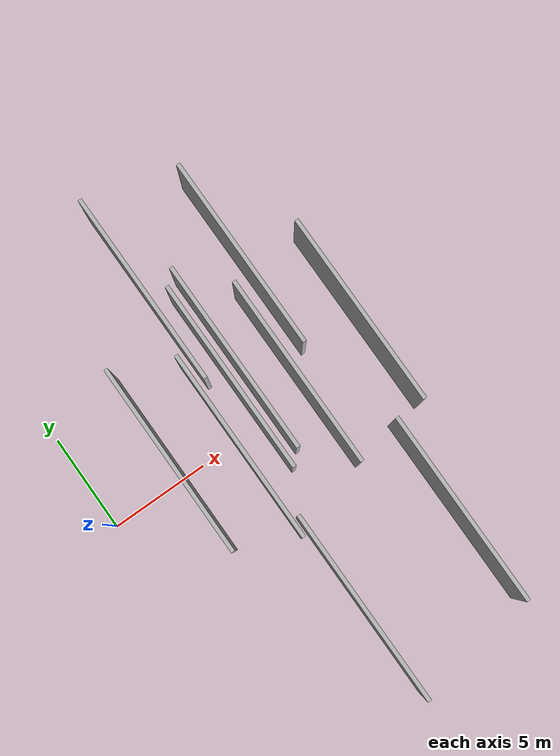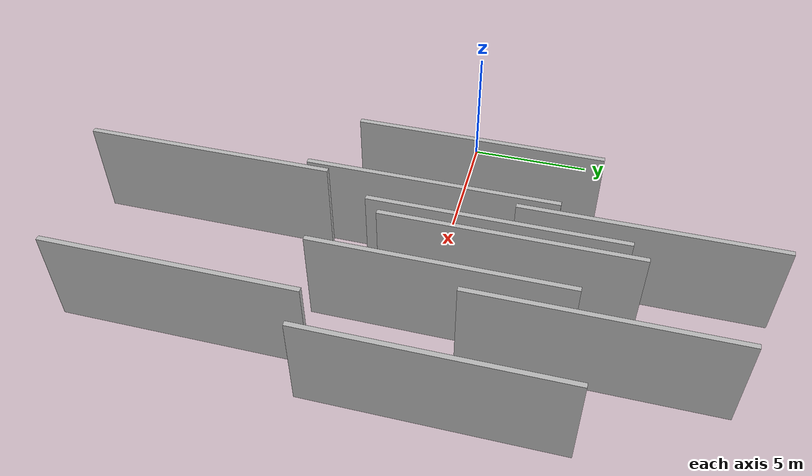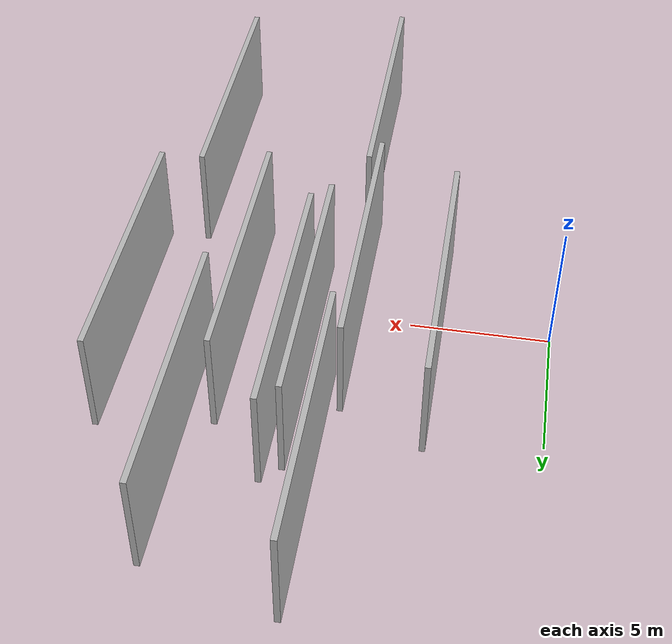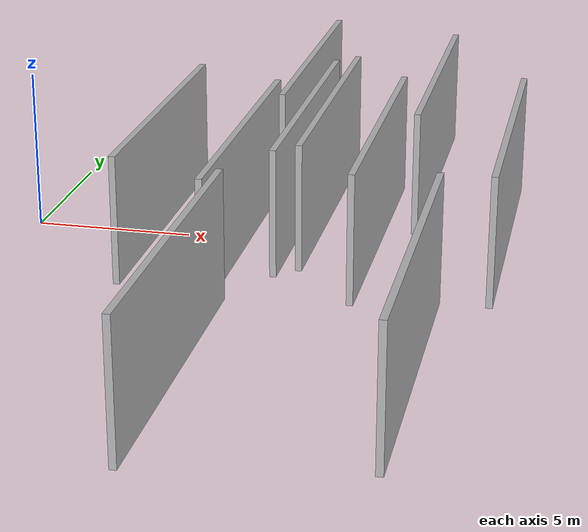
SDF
<sdf version="1.6">
 <world name="default">
  <scene>
   <sky><clouds><speed>12</speed></clouds></sky>
   <ambient>0.4 0.4 0.4 1</ambient>
   <background>0.7 0.7 0.7 1</background>
   <shadows>1</shadows>
  </scene>
  <gravity>0 0 -9.8066</gravity>
  <magnetic_field>6e-06 2.3e-05 -4.2e-05</magnetic_field>
  <physics default="0" name="default_physics" type="ode">
   <ode>
    <solver>
     <type>quick</type>
     <iters>10</iters>
     <sor>1.0</sor>
     <use_dynamic_moi_rescaling>0</use_dynamic_moi_rescaling>
    </solver>
    <constraints>
     <cfm>0</cfm>
     <erp>0.2</erp>
     <contact_max_correcting_vel>100</contact_max_correcting_vel>
     <contact_surface_layer>0.001</contact_surface_layer>
    </constraints>
   </ode>
   <max_step_size>0.004</max_step_size>
   <real_time_factor>1</real_time_factor>
   <real_time_update_rate>250</real_time_update_rate>
  </physics>
  <light name="sun" type="directional">
   <pose>0 0 10 0 0 0</pose>
   <diffuse>0.8 0.8 0.8 1</diffuse>
   <specular>0.2 0.2 0.2 1</specular>
   <attenuation>
    <range>1000</range>
    <constant>0.9</constant>
    <linear>0.01</linear>
    <quadratic>0.001</quadratic>
   </attenuation>
   <direction>-0.5 0.1 -0.9</direction>
  </light>
  <model name="grey_wall_1">
   <static>1</static>
   <pose>14.9254 1.4174 0.0 0.000000 0.000000 1.570796</pose>
   <link name="link">
    <pose>0 0 2.00 0 0 0</pose>
    <collision name="collision"><geometry><box><size>10.00 0.2 4.00</size></box></geometry></collision>
    <visual name="visual">
     <cast_shadows>0</cast_shadows>
     <geometry><box><size>10.00 0.2 4.00</size></box></geometry>
     <material>
      <script>
       <uri>model://HANNAS_wall/materials/scripts</uri>
       <uri>model://HANNAS_wall/materials/textures</uri>
       <name>vrc/HANNAS_wall</name>
      </script>
     </material>
    </visual>
   </link>
  </model>
  <model name="grey_wall_2">
   <static>1</static>
   <pose>10.9847 0.7421 0.0 0.000000 0.000000 1.570796</pose>
   <link name="link">
    <pose>0 0 2.00 0 0 0</pose>
    <collision name="collision"><geometry><box><size>10.00 0.2 4.00</size></box></geometry></collision>
    <visual name="visual">
     <cast_shadows>0</cast_shadows>
     <geometry><box><size>10.00 0.2 4.00</size></box></geometry>
     <material>
      <script>
       <uri>model://HANNAS_wall/materials/scripts</uri>
       <uri>model://HANNAS_wall/materials/textures</uri>
       <name>vrc/HANNAS_wall</name>
      </script>
     </material>
    </visual>
   </link>
  </model>
  <model name="grey_wall_3">
   <static>1</static>
   <pose>8.3673 2.2886 0.0 0.000000 0.000000 1.570796</pose>
   <link name="link">
    <pose>0 0 2.00 0 0 0</pose>
    <collision name="collision"><geometry><box><size>10.00 0.2 4.00</size></box></geometry></collision>
    <visual name="visual">
     <cast_shadows>0</cast_shadows>
     <geometry><box><size>10.00 0.2 4.00</size></box></geometry>
     <material>
      <script>
       <uri>model://HANNAS_wall/materials/scripts</uri>
       <uri>model://HANNAS_wall/materials/textures</uri>
       <name>vrc/HANNAS_wall</name>
      </script>
     </material>
    </visual>
   </link>
  </model>
  <model name="grey_wall_4">
   <static>1</static>
   <pose>7.2706 -9.5734 0.0 0.000000 0.000000 1.570796</pose>
   <link name="link">
    <pose>0 0 2.00 0 0 0</pose>
    <collision name="collision"><geometry><box><size>10.00 0.2 4.00</size></box></geometry></collision>
    <visual name="visual">
     <cast_shadows>0</cast_shadows>
     <geometry><box><size>10.00 0.2 4.00</size></box></geometry>
     <material>
      <script>
       <uri>model://HANNAS_wall/materials/scripts</uri>
       <uri>model://HANNAS_wall/materials/textures</uri>
       <name>vrc/HANNAS_wall</name>
      </script>
     </material>
    </visual>
   </link>
  </model>
  <model name="grey_wall_5">
   <static>1</static>
   <pose>12.0052 6.6397 0.0 0.000000 0.000000 1.570796</pose>
   <link name="link">
    <pose>0 0 2.00 0 0 0</pose>
    <collision name="collision"><geometry><box><size>10.00 0.2 4.00</size></box></geometry></collision>
    <visual name="visual">
     <cast_shadows>0</cast_shadows>
     <geometry><box><size>10.00 0.2 4.00</size></box></geometry>
     <material>
      <script>
       <uri>model://HANNAS_wall/materials/scripts</uri>
       <uri>model://HANNAS_wall/materials/textures</uri>
       <name>vrc/HANNAS_wall</name>
      </script>
     </material>
    </visual>
   </link>
  </model>
  <model name="grey_wall_6">
   <static>1</static>
   <pose>9.0205 2.9055 0.0 0.000000 0.000000 1.570796</pose>
   <link name="link">
    <pose>0 0 2.00 0 0 0</pose>
    <collision name="collision"><geometry><box><size>10.00 0.2 4.00</size></box></geometry></collision>
    <visual name="visual">
     <cast_shadows>0</cast_shadows>
     <geometry><box><size>10.00 0.2 4.00</size></box></geometry>
     <material>
      <script>
       <uri>model://HANNAS_wall/materials/scripts</uri>
       <uri>model://HANNAS_wall/materials/textures</uri>
       <name>vrc/HANNAS_wall</name>
      </script>
     </material>
    </visual>
   </link>
  </model>
  <model name="grey_wall_7">
   <static>1</static>
   <pose>6.9070 -0.5269 0.0 0.000000 0.000000 1.570796</pose>
   <link name="link">
    <pose>0 0 2.00 0 0 0</pose>
    <collision name="collision"><geometry><box><size>10.00 0.2 4.00</size></box></geometry></collision>
    <visual name="visual">
     <cast_shadows>0</cast_shadows>
     <geometry><box><size>10.00 0.2 4.00</size></box></geometry>
     <material>
      <script>
       <uri>model://HANNAS_wall/materials/scripts</uri>
       <uri>model://HANNAS_wall/materials/textures</uri>
       <name>vrc/HANNAS_wall</name>
      </script>
     </material>
    </visual>
   </link>
  </model>
  <model name="grey_wall_8">
   <static>1</static>
   <pose>7.4064 7.8521 0.0 0.000000 0.000000 1.570796</pose>
   <link name="link">
    <pose>0 0 2.00 0 0 0</pose>
    <collision name="collision"><geometry><box><size>10.00 0.2 4.00</size></box></geometry></collision>
    <visual name="visual">
     <cast_shadows>0</cast_shadows>
     <geometry><box><size>10.00 0.2 4.00</size></box></geometry>
     <material>
      <script>
       <uri>model://HANNAS_wall/materials/scripts</uri>
       <uri>model://HANNAS_wall/materials/textures</uri>
       <name>vrc/HANNAS_wall</name>
      </script>
     </material>
    </visual>
   </link>
  </model>
  <model name="grey_wall_9">
   <static>1</static>
   <pose>13.4043 -8.5365 0.0 0.000000 0.000000 1.570796</pose>
   <link name="link">
    <pose>0 0 2.00 0 0 0</pose>
    <collision name="collision"><geometry><box><size>10.00 0.2 4.00</size></box></geometry></collision>
    <visual name="visual">
     <cast_shadows>0</cast_shadows>
     <geometry><box><size>10.00 0.2 4.00</size></box></geometry>
     <material>
      <script>
       <uri>model://HANNAS_wall/materials/scripts</uri>
       <uri>model://HANNAS_wall/materials/textures</uri>
       <name>vrc/HANNAS_wall</name>
      </script>
     </material>
    </visual>
   </link>
  </model>
  <model name="grey_wall_10">
   <static>1</static>
   <pose>3.9557 0.7713 0.0 0.000000 0.000000 1.570796</pose>
   <link name="link">
    <pose>0 0 2.00 0 0 0</pose>
    <collision name="collision"><geometry><box><size>10.00 0.2 4.00</size></box></geometry></collision>
    <visual name="visual">
     <cast_shadows>0</cast_shadows>
     <geometry><box><size>10.00 0.2 4.00</size></box></geometry>
     <material>
      <script>
       <uri>model://HANNAS_wall/materials/scripts</uri>
       <uri>model://HANNAS_wall/materials/textures</uri>
       <name>vrc/HANNAS_wall</name>
      </script>
     </material>
    </visual>
   </link>
  </model>
 </world>
</sdf>
